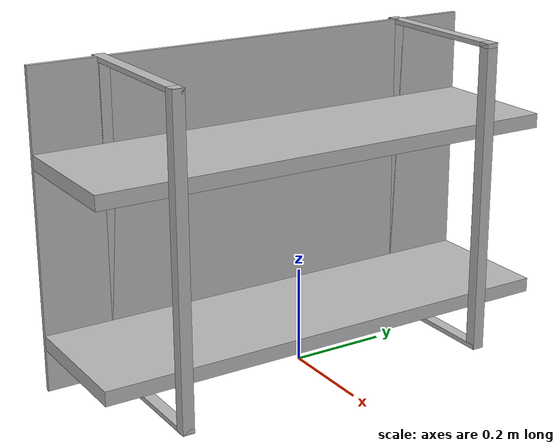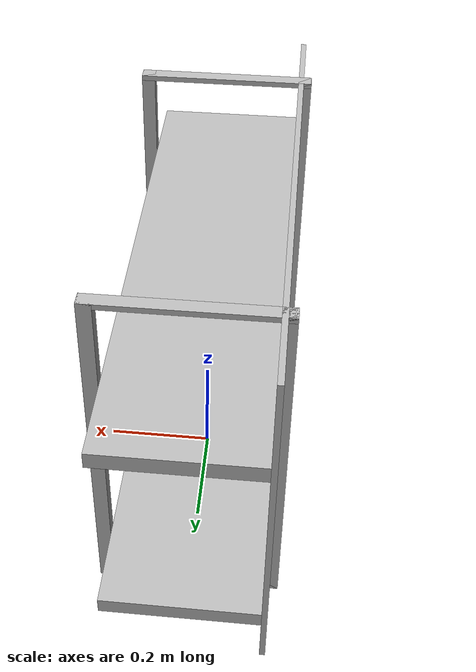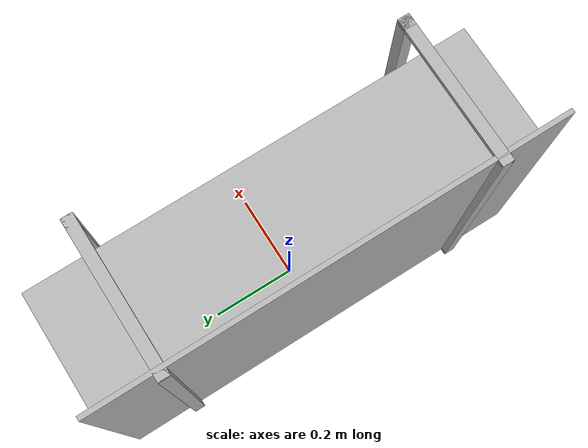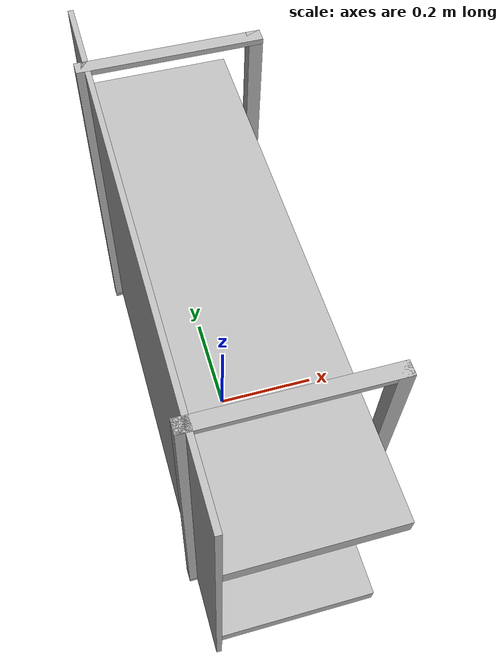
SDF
<?xml version="1.0"?>
<sdf version="1.6">
  <model name="rwc2017/shelf_light">
    <link name="1_link">
      <collision name="1_col">
        <geometry>
          <box>
            <size>0.01 1.0 0.66</size>
          </box>
        </geometry>
      </collision>
      <visual name="1_vis">
        <geometry>
          <box>
            <size>0.01 1.0 0.66</size>
          </box>
        </geometry>
      </visual>
      <pose>-0.145 0.0 0.33 0 0 0</pose>
    </link>
    <link name="2_link">
      <collision name="2_col">
        <geometry>
          <box>
            <size>0.28 1.0 0.03</size>
          </box>
        </geometry>
      </collision>
      <visual name="2_vis">
        <geometry>
          <box>
            <size>0.28 1.0 0.03</size>
          </box>
        </geometry>
      </visual>
      <pose>0.0 0 0.105 0 0 0</pose>
    </link>
    <link name="3_link">
      <collision name="3_col">
        <geometry>
          <box>
            <size>0.28 1.0 0.03</size>
          </box>
        </geometry>
      </collision>
      <visual name="3_vis">
        <geometry>
          <box>
            <size>0.28 1.0 0.03</size>
          </box>
        </geometry>
      </visual>
      <pose>0.0 0 0.475 0 0 0</pose>
    </link>
    <link name="4_link">
      <collision name="4_col">
        <geometry>
          <box>
            <size>0.025 0.025 0.66</size>
          </box>
        </geometry>
      </collision>
      <visual name="4_vis">
        <geometry>
          <box>
            <size>0.025 0.025 0.66</size>
          </box>
        </geometry>
      </visual>
      <pose>-0.1525 -0.3475 0.33 0 0 0</pose>
    </link>
    <link name="5_link">
      <collision name="5_col">
        <geometry>
          <box>
            <size>0.025 0.025 0.66</size>
          </box>
        </geometry>
      </collision>
      <visual name="5_vis">
        <geometry>
          <box>
            <size>0.025 0.025 0.66</size>
          </box>
        </geometry>
      </visual>
      <pose>0.1525 -0.3475 0.33 0 0 0</pose>
    </link>
    <link name="6_link">
      <collision name="6_col">
        <geometry>
          <box>
            <size>0.33 0.025 0.01</size>
          </box>
        </geometry>
      </collision>
      <visual name="6_vis">
        <geometry>
          <box>
            <size>0.33 0.025 0.01</size>
          </box>
        </geometry>
      </visual>
      <pose>0.0 -0.3475 0.005 0 0 0</pose>
    </link>
    <link name="7_link">
      <collision name="7_col">
        <geometry>
          <box>
            <size>0.33 0.025 0.01</size>
          </box>
        </geometry>
      </collision>
      <visual name="7_vis">
        <geometry>
          <box>
            <size>0.33 0.025 0.01</size>
          </box>
        </geometry>
      </visual>
      <pose>0.0 -0.3475 0.655 0 0 0</pose>
    </link>
    <link name="8_link">
      <collision name="8_col">
        <geometry>
          <box>
            <size>0.025 0.025 0.66</size>
          </box>
        </geometry>
      </collision>
      <visual name="8_vis">
        <geometry>
          <box>
            <size>0.025 0.025 0.66</size>
          </box>
        </geometry>
      </visual>
      <pose>-0.1525 0.3475 0.33 0 0 0</pose>
    </link>
    <link name="9_link">
      <collision name="9_col">
        <geometry>
          <box>
            <size>0.025 0.025 0.66</size>
          </box>
        </geometry>
      </collision>
      <visual name="9_vis">
        <geometry>
          <box>
            <size>0.025 0.025 0.66</size>
          </box>
        </geometry>
      </visual>
      <pose>0.1525 0.3475 0.33 0 0 0</pose>
    </link>
    <link name="10_link">
      <collision name="10_col">
        <geometry>
          <box>
            <size>0.33 0.025 0.01</size>
          </box>
        </geometry>
      </collision>
      <visual name="10_vis">
        <geometry>
          <box>
            <size>0.33 0.025 0.01</size>
          </box>
        </geometry>
      </visual>
      <pose>0.0 0.3475 0.005 0 0 0</pose>
    </link>
    <link name="11_link">
      <collision name="11_col">
        <geometry>
          <box>
            <size>0.33 0.025 0.01</size>
          </box>
        </geometry>
      </collision>
      <visual name="11_vis">
        <geometry>
          <box>
            <size>0.33 0.025 0.01</size>
          </box>
        </geometry>
      </visual>
      <pose>0.0 0.3475 0.655 0 0 0</pose>
    </link>
    <link name="in_front_of">
      <virtual_volume name="in_front_of_vv">
        <geometry>
          <box>
            <size>0.2 0.8 0.01</size>
          </box>
        </geometry>
        <pose>0.665 0.0 0.005 0 0 0</pose>
      </virtual_volume>
    </link>
    <link name="on_top_of">
      <virtual_volume name="on_top_of_vv">
        <geometry>
          <box>
            <size>0.26 0.64 0.34</size>
          </box>
        </geometry>
        <pose>0.0 0.0 0.68 0 0 0</pose>
      </virtual_volume>
    </link>
    <static>true</static>
  </model>
</sdf>
